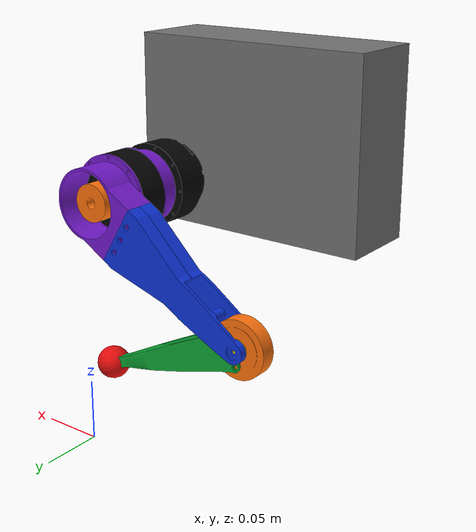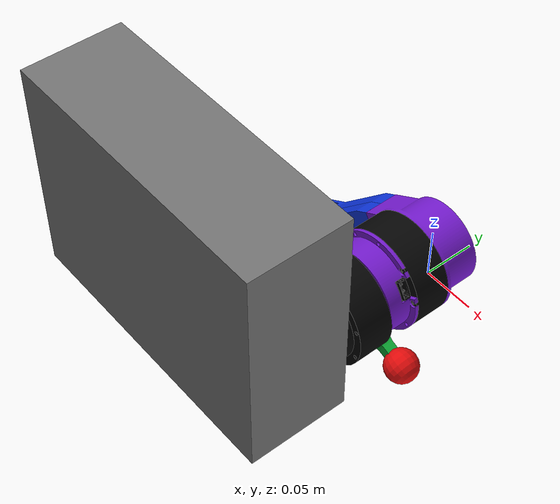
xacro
<?xml version="1.0"?>
<robot name="robot_dog" xmlns:xacro="http://www.ros.org/wiki/xacro">

  <xacro:include filename="$(find robot_dog_description)/xacro/const.xacro"/>
  <xacro:include filename="$(find robot_dog_description)/xacro/materials.xacro"/>
  <xacro:include filename="$(find robot_dog_description)/xacro/leg.xacro"/>
  <xacro:include filename="$(find robot_dog_description)/xacro/ros2_control.xacro"/>

  <!-- Fixed world reference -->
  <link name="world"/>

  <!-- Sliding carriage reference frame -->
  <link name="base_footprint">
    <inertial>
      <origin xyz="0 0 0" rpy="0 0 0"/>
      <mass value="0.01"/>
      <inertia
        ixx="0.00001"
        ixy="0.0"
        ixz="0.0"
        iyy="0.00001"
        iyz="0.0"
        izz="0.00001"/>
    </inertial>
  </link>

  <!--
    Vertical rail joint:
    Allows the whole stand/leg assembly to slide only along Z.
    This lets the leg push the body upward under ground contact.
  -->
  <joint name="vertical_rail_joint" type="prismatic">
    <parent link="world"/>
    <child link="base_footprint"/>
    <origin xyz="0 0 0" rpy="0 0 0"/>
    <axis xyz="0 0 1"/>
    <limit lower="-0.08" upper="0.60" effort="1000.0" velocity="5.0"/>
    <dynamics damping="3.0" friction="0.2"/>
  </joint>

  <!-- Temporary test stand / body carriage -->
  <link name="base_link">

    <!-- Visible test stand block.
         Front face is approximately flush with the back face of the fixed actuator. -->
    <visual>
      <origin xyz="0 -0.24655 0.21" rpy="0 0 0"/>
      <geometry>
        <box size="0.24 0.08 0.18"/>
      </geometry>
      <material name="body_gray"/>
    </visual>

    <!-- Simple collision for test stand -->
    <collision>
      <origin xyz="0 -0.24655 0.21" rpy="0 0 0"/>
      <geometry>
        <box size="0.24 0.08 0.18"/>
      </geometry>
    </collision>

    <!-- Approximate loaded carriage/body mass.
         Increase this later to test heavier body loads. -->
    <inertial>
      <origin xyz="0 -0.24655 0.21" rpy="0 0 0"/>
      <mass value="4.0"/>
      <inertia
        ixx="0.015"
        ixy="0.0"
        ixz="0.0"
        iyy="0.020"
        iyz="0.0"
        izz="0.020"/>
    </inertial>

  </link>

  <joint name="base_footprint_joint" type="fixed">
    <parent link="base_footprint"/>
    <child link="base_link"/>
    <origin xyz="0 0 0" rpy="0 0 0"/>
  </joint>

  <!-- Single front-right test leg mounted to the vertical sliding stand.
       Current leg zero pose is the home/squat pose. -->
  <xacro:simple_leg
    prefix="front_right"
    parent="base_link"
    x="0.08"
    y="-0.10"
    z="0.1545"/>

  <!-- ROS 2 control interface for Gazebo-controlled single leg -->
  <xacro:single_leg_ros2_control name="GazeboSimSystem"/>

  <!-- Gazebo ros2_control plugin -->
  <gazebo>
    <plugin filename="gz_ros2_control-system" name="gz_ros2_control::GazeboSimROS2ControlPlugin">
      <parameters>$(find robot_dog_description)/config/controllers.yaml</parameters>
    </plugin>
  </gazebo>

</robot>

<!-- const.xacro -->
<robot xmlns:xacro="http://www.ros.org/wiki/xacro">

  <!-- Main dimensions in meters -->
  <xacro:property name="upper_leg_length" value="0.1875"/>
  <xacro:property name="lower_leg_length" value="0.1685"/>
  <xacro:property name="foot_radius" value="0.015"/>

  <!-- Temporary simple body dimensions -->
  <xacro:property name="body_length" value="0.30"/>
  <xacro:property name="body_width" value="0.12"/>
  <xacro:property name="body_height" value="0.08"/>

  <!-- Simple collision thicknesses -->
  <xacro:property name="upper_leg_width" value="0.035"/>
  <xacro:property name="upper_leg_depth" value="0.030"/>
  <xacro:property name="lower_leg_width" value="0.030"/>
  <xacro:property name="lower_leg_depth" value="0.025"/>

  <xacro:property name="hip_lower_limit" value="-4.17159"/>
  <xacro:property name="hip_upper_limit" value="2.11159"/>

  <xacro:property name="knee_lower_limit" value="-0.131"/>
  <xacro:property name="knee_upper_limit" value="4.569"/>

  <!-- Actuator/joint effort limits based on RobStride 02 specs.
     Hip is direct actuator output.
     Knee uses 30T/20T belt ratio, so torque is multiplied by 1.5.
       -->

  <xacro:property name="hip_effort_limit" value="17.0"/>
  <xacro:property name="knee_effort_limit" value="25.5"/>

  <!-- Conservative first-pass velocity limits for Gazebo control.
       These are lower than actuator max speed to keep first control tests stable. -->
  <xacro:property name="hip_velocity_limit" value="10.0"/>
  <xacro:property name="knee_velocity_limit" value="10.0"/>

  <xacro:property name="knee_straight_angle" value="1.570796"/>

</robot>

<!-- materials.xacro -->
<robot xmlns:xacro="http://www.ros.org/wiki/xacro">

  <material name="body_gray">
    <color rgba="0.45 0.45 0.45 1.0"/>
  </material>

  <material name="actuator_black">
    <color rgba="0.02 0.02 0.02 1.0"/>
  </material>

  <material name="upper_leg_blue">
    <color rgba="0.05 0.20 0.85 1.0"/>
  </material>

  <material name="lower_leg_green">
    <color rgba="0.05 0.65 0.20 1.0"/>
  </material>

  <material name="pulley_orange">
    <color rgba="1.0 0.45 0.05 1.0"/>
  </material>

  <material name="pin_yellow">
    <color rgba="1.0 0.85 0.05 1.0"/>
  </material>

  <material name="shroud_purple">
    <color rgba="0.45 0.10 0.80 1.0"/>
  </material>

  <material name="foot_red">
    <color rgba="0.90 0.05 0.05 1.0"/>
  </material>

</robot>

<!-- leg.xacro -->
<robot xmlns:xacro="http://www.ros.org/wiki/xacro">

  <xacro:macro name="simple_leg" params="prefix parent x y z">

    <!-- Fixed hip actuator link                                   -->
    <!-- This actuator body stays still when the hip slider moves. -->

    <link name="${prefix}_hip_motor_fixed">

      <!-- Fixed hip actuator body -->
      <visual>
        <origin xyz="-0.076951 -0.065148 -0.031931" rpy="-1.570796 -0.523599 0"/>
        <geometry>
          <mesh
            filename="package://robot_dog_description/meshes/RobStride02_Actuator.stl"
            scale="0.001 0.001 0.001"/>
        </geometry>
        <material name="actuator_black"/>
      </visual>

      <!-- Simple collision for fixed hip actuator.
           Origin is at the transformed STL body center, not the mesh origin. -->
      <collision>
        <origin xyz="0.000118 -0.083848 0.010078" rpy="-1.570796 -0.523599 0"/>
        <geometry>
          <cylinder radius="0.040" length="0.046"/>
        </geometry>
      </collision>

      <!-- Approximate inertial values for fixed RobStride actuator -->
      <inertial>
        <origin xyz="0.000118 -0.083848 0.010078" rpy="0 0 0"/>
        <mass value="0.405"/>
        <inertia
          ixx="0.00035"
          ixy="0.0"
          ixz="0.0"
          iyy="0.00035"
          iyz="0.0"
          izz="0.00035"/>
      </inertial>

    </link>

    <!-- Fixed mount from body/base to stationary hip actuator -->
    <joint name="${prefix}_hip_motor_fixed_joint" type="fixed">
      <parent link="${parent}"/>
      <child link="${prefix}_hip_motor_fixed"/>
      <origin xyz="${x} ${y} ${z}" rpy="0 0 0"/>
    </joint>

    <!-- Rotating upper leg link                                   -->
    <!-- This frame is centered on the fixed actuator shaft line.   -->
    <!-- Everything below rotates in a clean circle about Y.        -->

    <link name="${prefix}_upper_leg">

      <!-- Male thigh panel -->
      <visual>
        <origin xyz="-0.190118 0.060148 0.027422" rpy="0 0 0"/>
        <geometry>
          <mesh
            filename="package://robot_dog_description/meshes/Thigh_Panel_Male_V2.stl"
            scale="0.001 0.001 0.001"/>
        </geometry>
        <material name="upper_leg_blue"/>
      </visual>

      <!-- Female thigh panel: flipped inward and aligned flush with male -->
      <visual>
        <origin xyz="0.125088 0.085750 0.027422" rpy="0 0 3.141593"/>
        <geometry>
          <mesh
            filename="package://robot_dog_description/meshes/Thigh_Panel_Female_V2.stl"
            scale="0.001 0.001 0.001"/>
        </geometry>
        <material name="upper_leg_blue"/>
      </visual>

      <!-- Hip shroud -->
      <visual>
        <origin xyz="-0.124954 0.056541 -0.022608" rpy="0 0 0"/>
        <geometry>
          <mesh
            filename="package://robot_dog_description/meshes/Hip_Shroud_V1.stl"
            scale="0.001 0.001 0.001"/>
        </geometry>
        <material name="shroud_purple"/>
      </visual>

      <!-- Rotating actuator attached to thigh pulley mount -->
      <visual>
        <origin xyz="-0.087760 0.052400 0.002001" rpy="-1.570796 0 0"/>
        <geometry>
          <mesh
            filename="package://robot_dog_description/meshes/RobStride02_Actuator.stl"
            scale="0.001 0.001 0.001"/>
        </geometry>
        <material name="actuator_black"/>
      </visual>

      <!-- Simple collision for rotating actuator.
           Origin is at the transformed STL body center. -->
      <collision>
        <origin xyz="-0.000012 0.033700 -0.000153" rpy="-1.570796 0 0"/>
        <geometry>
          <cylinder radius="0.040" length="0.046"/>
        </geometry>
      </collision>

      <!-- Thigh pulley mount: this rotates about the fixed actuator shaft -->
      <visual>
        <origin xyz="-0.087749 0.052400 0.002182" rpy="-1.570796 0 0"/>
        <geometry>
          <mesh
            filename="package://robot_dog_description/meshes/Thigh_Pulley_Mount_V1.stl"
            scale="0.001 0.001 0.001"/>
        </geometry>
        <material name="shroud_purple"/>
      </visual>

      <!-- 20T motor pulley -->
      <visual>
        <origin xyz="-0.000012 0.063900 -0.000129" rpy="0 0 0"/>
        <geometry>
          <mesh
            filename="package://robot_dog_description/meshes/20T_Pulley_Dimensions.stl"
            scale="0.001 0.001 0.001"/>
        </geometry>
        <material name="pulley_orange"/>
      </visual>

      <!-- Simplified upper-leg side rail collisions.
           These represent the straight thigh panel areas only.
           The 29 mm gap above the lower support cylinder is preserved. -->

      <!-- Left/outer thigh side rail collision -->
      <collision>
        <origin xyz="-0.014000 0.071150 -0.080600" rpy="0 0 0"/>
        <geometry>
          <box size="0.008 0.018 0.074"/>
        </geometry>
      </collision>

      <!-- Right/inner thigh side rail collision -->
      <collision>
        <origin xyz="0.014000 0.071150 -0.080600" rpy="0 0 0"/>
        <geometry>
          <box size="0.008 0.018 0.074"/>
        </geometry>
      </collision>

      <collision>
        <origin xyz="0.000000 0.071150 -0.151700" rpy="1.570796 0 0"/>
        <geometry>
          <cylinder radius="0.005" length="0.045"/>
        </geometry>
      </collision>

      <!-- Approximate inertial values for upper leg assembly -->
      <inertial>
        <origin xyz="-0.000015 0.071150 -0.105000" rpy="0 0 0"/>
        <mass value="0.9"/>
        <inertia
          ixx="0.004"
          ixy="0.0"
          ixz="0.0"
          iyy="0.004"
          iyz="0.0"
          izz="0.001"/>
      </inertial>

    </link>

    <joint name="${prefix}_hip_joint" type="revolute">
      <parent link="${prefix}_hip_motor_fixed"/>
      <child link="${prefix}_upper_leg"/>
      <origin xyz="0.000118 -0.065148 0.010078" rpy="0 1.03 0"/>
      <axis xyz="0 1 0"/>
      <limit lower="${hip_lower_limit}" upper="${hip_upper_limit}" effort="${hip_effort_limit}" velocity="${hip_velocity_limit}"/>
    </joint>

    <!-- Lower leg link                                            -->
    <!-- Lower leg, 30T pulley, and knee pin move with knee joint. -->

    <link name="${prefix}_lower_leg">

      <!-- Lower leg main part -->
      <visual>
        <origin xyz="0 0.007 0" rpy="3.141593 0 0"/>
        <geometry>
          <mesh
            filename="package://robot_dog_description/meshes/Lower_Leg_V1.stl"
            scale="0.001 0.001 0.001"/>
        </geometry>
        <material name="lower_leg_green"/>
      </visual>

      <!-- 30T knee pulley: aligned with lower leg -->
      <visual>
        <origin xyz="0 0.006800 -0.050000" rpy="3.141593 0 0"/>
        <geometry>
          <mesh
            filename="package://robot_dog_description/meshes/30T_Pulley_Dimension.stl"
            scale="0.001 0.001 0.001"/>
        </geometry>
        <material name="pulley_orange"/>
      </visual>

      <!-- Knee pin -->
      <visual>
        <origin xyz="0.093000 -0.011700 0.038000" rpy="0 1.570796 0"/>
        <geometry>
          <mesh
            filename="package://robot_dog_description/meshes/Knee_Pin_V1.stl"
            scale="0.001 0.001 0.001"/>
        </geometry>
        <material name="pin_yellow"/>
      </visual>

      <!-- Simple collision box for lower leg.
           Shortened so it stops above the 15 mm foot sphere. -->
      <collision>
        <origin xyz="0 0 -0.071" rpy="0 0 0"/>
        <geometry>
          <box size="0.026 0.020 0.142"/>
        </geometry>
      </collision>

      <!-- Approximate inertial values for lower leg assembly -->
      <inertial>
        <origin xyz="0 0 -0.071" rpy="0 0 0"/>
        <mass value="0.45"/>
        <inertia
          ixx="0.002"
          ixy="0.0"
          ixz="0.0"
          iyy="0.002"
          iyz="0.0"
          izz="0.0005"/>
      </inertial>

    </link>

    <joint name="${prefix}_knee_joint" type="revolute">
      <parent link="${prefix}_upper_leg"/>
      <child link="${prefix}_lower_leg"/>
      <origin xyz="-0.000118 0.071450 -0.187578" rpy="0 -2.239796 0"/>
      <axis xyz="0 1 0"/>
      <limit lower="${knee_lower_limit}" upper="${knee_upper_limit}" effort="${knee_effort_limit}" velocity="${knee_velocity_limit}"/>
    </joint>

    <!-- Foot link                                                 -->

    <link name="${prefix}_foot">

      <visual>
        <origin xyz="0 0 0" rpy="0 0 0"/>
        <geometry>
          <sphere radius="${foot_radius}"/>
        </geometry>
        <material name="foot_red"/>
      </visual>

      <!-- Simple collision for foot contact -->
      <collision>
        <origin xyz="0 0 0" rpy="0 0 0"/>
        <geometry>
          <sphere radius="${foot_radius}"/>
        </geometry>
      </collision>

      <!-- Approximate inertial values for TPU/rubber foot -->
      <inertial>
        <origin xyz="0 0 0" rpy="0 0 0"/>
        <mass value="0.05"/>
        <inertia
          ixx="0.00001"
          ixy="0.0"
          ixz="0.0"
          iyy="0.00001"
          iyz="0.0"
          izz="0.00001"/>
      </inertial>

    </link>

    <!-- Foot placed at visible end of Lower_Leg_V1.stl: 157 mm -->
    <joint name="${prefix}_foot_joint" type="fixed">
      <parent link="${prefix}_lower_leg"/>
      <child link="${prefix}_foot"/>
      <origin xyz="0 0 -0.157" rpy="0 0 0"/>
    </joint>

  </xacro:macro>

</robot>
